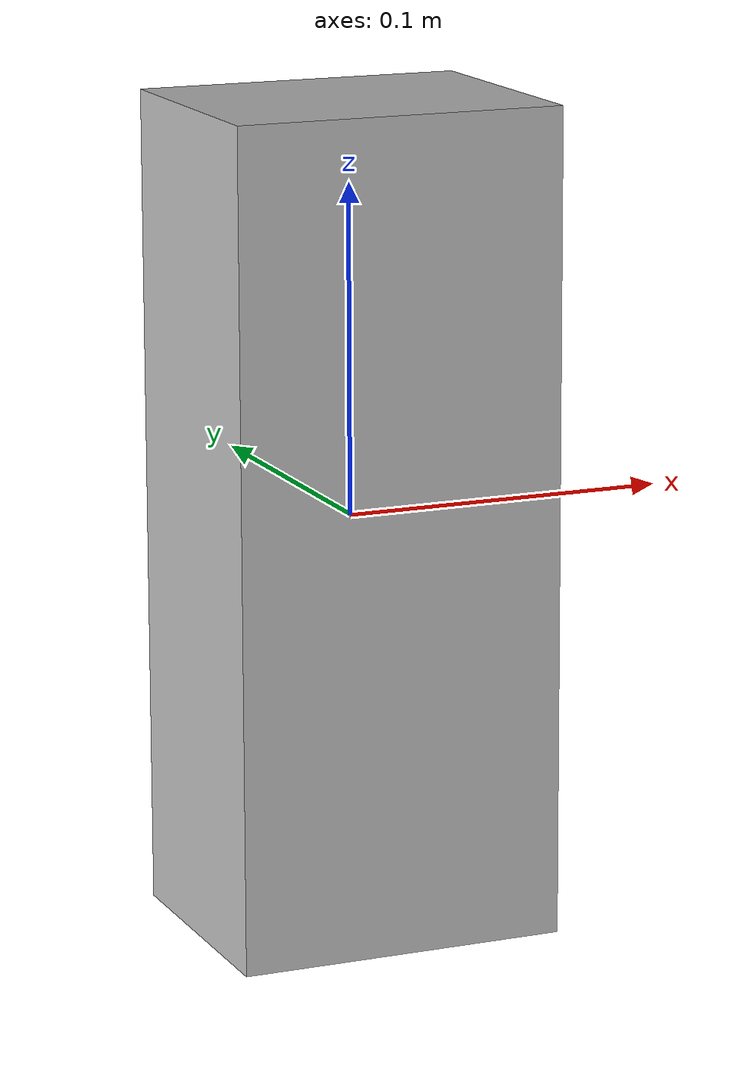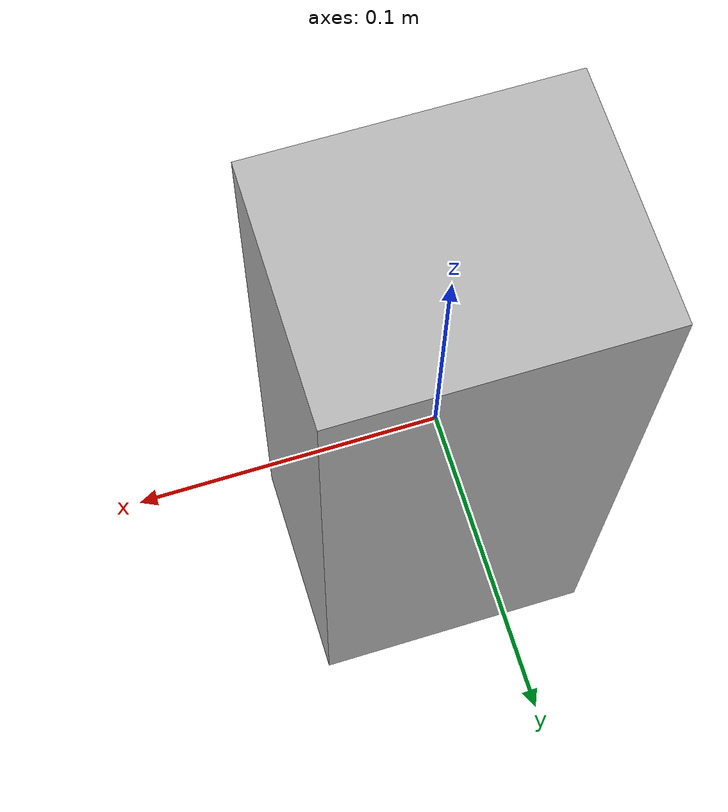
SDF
<?xml version='1.0'?>
<sdf version="1.4">
<model name="MilkBox">
  <pose>0 0 0 0 0 0</pose>
  <static>false</static>
    <link name="link">
      <inertial>
        <mass>0.5</mass>
        <inertia> <!-- interias are tricky to compute -->
          <!-- http://answers.gazebosim.org/question/4372/the-inertia-matrix-explained/ -->
          <ixx>0.00287</ixx>       <!-- for a box: ixx = 0.083 * mass * (y*y + z*z) -->
          <ixy>0.0</ixy>         <!-- for a box: ixy = 0 -->
          <ixz>0.0</ixz>         <!-- for a box: ixz = 0 -->
          <iyy>0.00068</iyy>       <!-- for a box: iyy = 0.083 * mass * (x*x + z*z) -->
          <iyz>0.0</iyz>         <!-- for a box: iyz = 0 -->
          <izz>0.003</izz>       <!-- for a box: izz = 0.083 * mass * (x*x + y*y) -->
        </inertia>
      </inertial>
      <collision name="collision">
        <geometry>
          <box>
            <size>0.1 0.08 0.25</size>
          </box>
        </geometry>
      </collision>
      <visual name="visual">
        <geometry>
          <box>
            <size>0.1 0.08 0.25</size>
          </box>
        </geometry>
      </visual>
    </link>
  </model>
</sdf>
